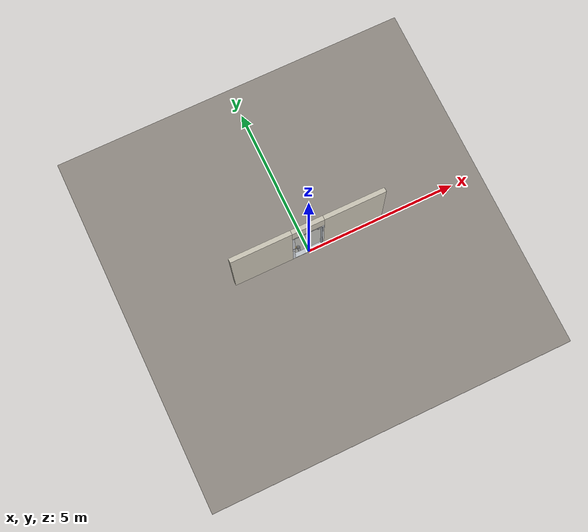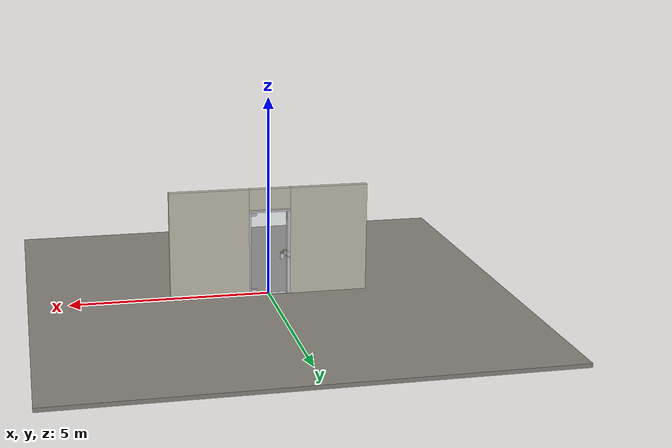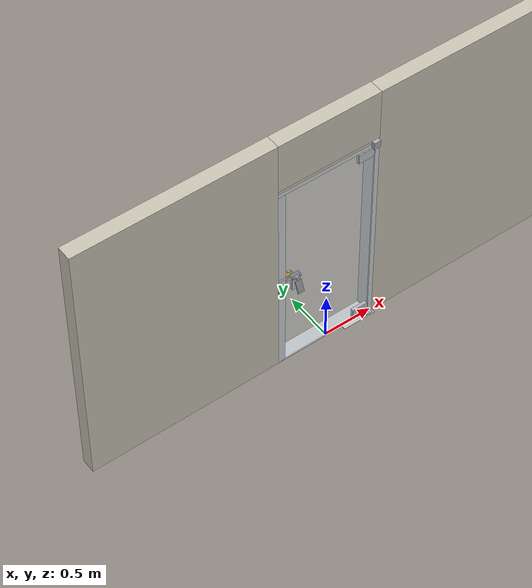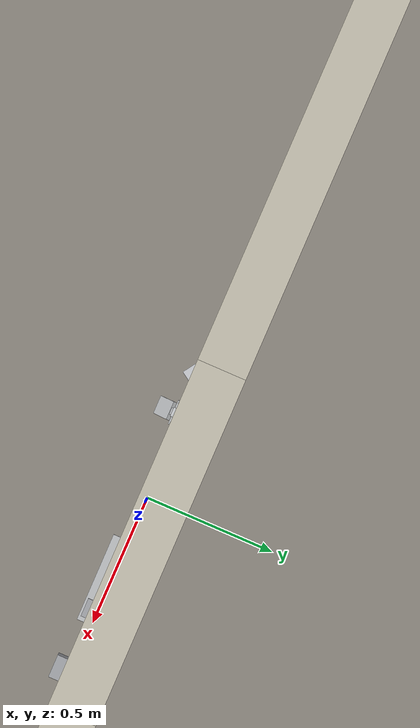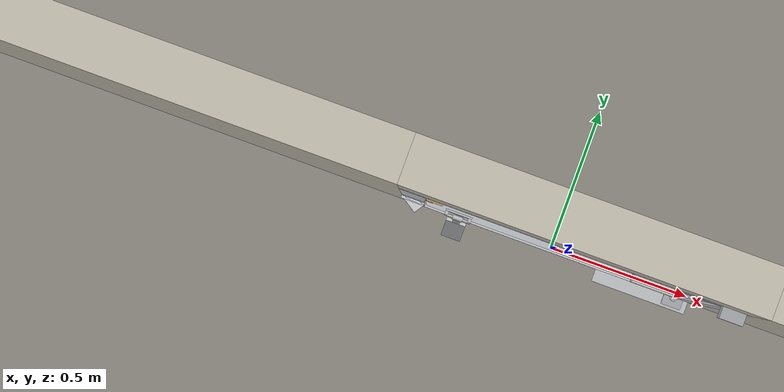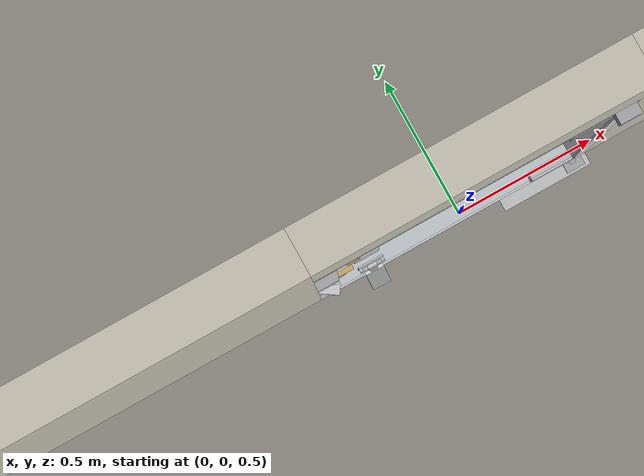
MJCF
<?xml version="1.0" ?>
<mujoco model="db0039_swing_single_full">
  <compiler angle="radian" meshdir="../../hardware" texturedir="../../textures" autolimits="true" inertiafromgeom="false"/>
  <option timestep="0.002" integrator="implicitfast" cone="elliptic" impratio="10" noslip_iterations="3">
    <flag multiccd="enable"/>
  </option>
  <size memory="16M"/>
  <default>
    <geom condim="4" solref="0.005 1" solimp="0.95 0.99 0.001"/>
    <joint solreflimit="0.005 1" solimplimit="0.95 0.99 0.001"/>
    <tendon solreflimit="0.005 1"/>
    <equality solref="0.002 1"/>
  </default>
  <visual>
    <headlight ambient="0.4 0.4 0.4" diffuse="0.7 0.7 0.7" specular="0.2 0.2 0.2"/>
    <quality shadowsize="4096"/>
    <map znear="0.01" zfar="60"/>
  </visual>
  <asset>
    <mesh name="thumbturn_eb5c9899a3" file="thumbturn_eb5c9899a3.obj"/>
    <material name="mat_floor" rgba="0.55 0.53 0.5 1" specular="0.2" shininess="0.15" reflectance="0"/>
    <material name="mat_wall" rgba="0.78 0.76 0.7 1" specular="0.2" shininess="0.1" reflectance="0"/>
    <material name="mat_leaf" rgba="0.85 0.92 0.95 0.25" specular="0.2" shininess="0.95" reflectance="0.1"/>
    <material name="mat_glass_leaf" rgba="0.85 0.92 0.95 0.25" specular="0.2" shininess="0.95" reflectance="0.1"/>
    <material name="mat_patch" rgba="0.75 0.76 0.77 1" specular="0.8" shininess="0.65" reflectance="0.4"/>
    <material name="mat_hinge" rgba="0.65 0.66 0.68 1" specular="0.74" shininess="0.5" reflectance="0.36"/>
    <material name="mat_op_stainless" rgba="0.75 0.76 0.77 1" specular="0.8" shininess="0.65" reflectance="0.4"/>
    <material name="mat_bolt" rgba="0.75 0.76 0.77 1" specular="0.8" shininess="0.65" reflectance="0.4"/>
    <material name="mat_deadbolt" rgba="0.85 0.66 0.3 1" specular="0.8" shininess="0.75" reflectance="0.4"/>
    <material name="mat_frame" rgba="0.8 0.81 0.83 1" specular="0.8" shininess="0.6" reflectance="0.4"/>
    <material name="mat_threshold" rgba="0.8 0.81 0.83 1" specular="0.8" shininess="0.6" reflectance="0.4"/>
    <material name="mat_closer" rgba="0.75 0.76 0.77 1" specular="0.8" shininess="0.65" reflectance="0.4"/>
    <texture name="skybox" type="skybox" builtin="gradient" rgb1="0.6 0.7 0.85" rgb2="0.9 0.92 0.95" width="256" height="256"/>
  </asset>
  <worldbody>
    <light name="sun" pos="1.5 -2.5 4" dir="-0.3 0.5 -0.8" directional="true" diffuse="0.8 0.8 0.8" specular="0.3 0.3 0.3" castshadow="true"/>
    <light name="fill" pos="-1.5 2.5 3" dir="0.3 -0.5 -0.7" directional="true" diffuse="0.35 0.35 0.4" castshadow="false"/>
    <camera name="robot_view" pos="0 -2.581812 1.812087" xyaxes="1 0 0 0 0.26963 0.962964" fovy="52"/>
    <camera name="far_view" pos="0 2.693812 1.812087" xyaxes="-1 0 0 0 -0.26963 0.962964" fovy="52"/>
    <camera name="iso" pos="-2.004737 -2.159762 2.234138" xyaxes="0.741536 -0.670913 0 0.242917 0.268487 0.932151" fovy="46"/>
    <camera name="detail_handle" pos="-0.1665 -0.857021 1.242663" xyaxes="0.97561 0.219512 0 -0.070934 0.315262 0.94635" fovy="38"/>
    <geom name="floor" type="box" size="6 6 0.05" pos="0 0 -0.05" material="mat_floor" group="0" contype="1" conaffinity="1" friction="0.8 0.005 0.0001" density="2400"/>
    <geom name="wall_left" type="box" size="0.98175 0.0725 1.3735" pos="-1.51825 0.056 1.3735" material="mat_wall" group="0" contype="1" conaffinity="1" friction="0.6 0.005 0.0001" density="800"/>
    <geom name="wall_right" type="box" size="0.99675 0.0725 1.3735" pos="1.50325 0.056 1.3735" material="mat_wall" group="0" contype="1" conaffinity="1" friction="0.6 0.005 0.0001" density="800"/>
    <geom name="wall_header" type="box" size="0.5215 0.0725 0.2625" pos="-0.015 0.056 2.4845" material="mat_wall" group="0" contype="1" conaffinity="1" friction="0.6 0.005 0.0001" density="800"/>
    <geom name="pivot_bottom_socket" type="box" size="0.035 0.035 0.0125" pos="0.4585 -0.0165 0.0025" material="mat_hinge" group="1" contype="0" conaffinity="0" density="7850"/>
    <geom name="pivot_top_bracket" type="box" size="0.035 0.035 0.0355" pos="0.4585 -0.0165 2.1865" material="mat_hinge" group="1" contype="0" conaffinity="0" density="7850"/>
    <geom name="leaf_deadbolt_strike_b" type="box" size="0.0155 0.003 0.0005" pos="-0.461 0 1.0865" quat="0.5 0.5 0.5 0.5" material="mat_deadbolt" group="1" contype="0" conaffinity="0" density="7800"/>
    <geom name="leaf_deadbolt_strike_l" type="box" size="0.003 0.0155 0.0005" pos="-0.461 -0.0125 1.105" quat="0.5 0.5 0.5 0.5" material="mat_deadbolt" group="1" contype="0" conaffinity="0" density="7800"/>
    <geom name="leaf_deadbolt_strike_t" type="box" size="0.0155 0.003 0.0005" pos="-0.461 0 1.1235" quat="0.5 0.5 0.5 0.5" material="mat_deadbolt" group="1" contype="0" conaffinity="0" density="7800"/>
    <geom name="leaf_deadbolt_strike_r" type="box" size="0.003 0.0155 0.0005" pos="-0.461 0.0125 1.105" quat="0.5 0.5 0.5 0.5" material="mat_deadbolt" group="1" contype="0" conaffinity="0" density="7800"/>
    <geom name="jamb_hinge" type="box" size="0.0225 0.0725 1.0735" pos="0.484 0.056 1.0735" material="mat_frame" group="0" contype="1" conaffinity="1" friction="0.6 0.005 0.0001" density="300"/>
    <geom name="strike_965_wall_n" type="box" size="0.0375 0.0595 0.018" pos="-0.499 0.069 0.965" material="mat_frame" group="0" contype="1" conaffinity="1" friction="0.6 0.005 0.0001" density="300"/>
    <geom name="strike_965_wall_p" type="box" size="0.0375 0.008 0.018" pos="-0.499 -0.0175 0.965" material="mat_frame" group="0" contype="1" conaffinity="1" friction="0.6 0.005 0.0001" density="300"/>
    <geom name="strike_965_ramp" type="box" size="0.0375 0.018028 0.018" pos="-0.502702 -0.019699 0.965" quat="0.957092 0 0 -0.289784" material="mat_frame" group="0" contype="1" conaffinity="1" friction="0.12 0.005 0.0001" density="300"/>
    <geom name="strike_965_back" type="box" size="0.026 0.0095 0.018" pos="-0.5105 0 0.965" material="mat_frame" group="0" contype="1" conaffinity="1" friction="0.6 0.005 0.0001" density="300"/>
    <geom name="strike_1105_wall_n" type="box" size="0.0375 0.0595 0.0155" pos="-0.499 0.069 1.105" material="mat_frame" group="0" contype="1" conaffinity="1" friction="0.6 0.005 0.0001" density="300"/>
    <geom name="strike_1105_wall_p" type="box" size="0.0375 0.0035 0.0155" pos="-0.499 -0.013 1.105" material="mat_frame" group="0" contype="1" conaffinity="1" friction="0.6 0.005 0.0001" density="300"/>
    <geom name="strike_1105_back" type="box" size="0.0228 0.0095 0.0155" pos="-0.5137 0 1.105" material="mat_frame" group="0" contype="1" conaffinity="1" friction="0.6 0.005 0.0001" density="300"/>
    <geom name="jamb_strike_0" type="box" size="0.0375 0.0725 0.4735" pos="-0.499 0.056 0.4735" material="mat_frame" group="0" contype="1" conaffinity="1" friction="0.6 0.005 0.0001" density="300"/>
    <geom name="jamb_strike_1" type="box" size="0.0375 0.0725 0.05325" pos="-0.499 0.056 1.03625" material="mat_frame" group="0" contype="1" conaffinity="1" friction="0.6 0.005 0.0001" density="300"/>
    <geom name="jamb_strike_2" type="box" size="0.0375 0.0725 0.51325" pos="-0.499 0.056 1.63375" material="mat_frame" group="0" contype="1" conaffinity="1" friction="0.6 0.005 0.0001" density="300"/>
    <geom name="jamb_head" type="box" size="0.5215 0.0725 0.0225" pos="-0.015 0.056 2.1695" material="mat_frame" group="0" contype="1" conaffinity="1" friction="0.6 0.005 0.0001" density="300"/>
    <geom name="head_stud" type="box" size="0.5215 0.0725 0.015" pos="-0.015 0.056 2.207" material="mat_wall" group="0" contype="1" conaffinity="1" friction="0.6 0.005 0.0001" density="500"/>
    <geom name="threshold" type="box" size="0.5065 0.0725 0.0065" pos="0 0.056 0.0065" material="mat_threshold" group="0" contype="1" conaffinity="1" friction="0.5 0.005 0.0001" density="2700"/>
    <geom name="floor_spring_cover" type="box" size="0.17 0.06 0.002" pos="0.3415 0 0.002" material="mat_closer" group="1" contype="0" conaffinity="0" density="7900"/>
    <site name="approach_point" pos="0 -1.5 0" quat="1 0 0 0" size="0.05" rgba="0.2 0.9 0.2 0.5" group="4"/>
    <site name="goal_point" pos="0 1.5 0" quat="1 0 0 0" size="0.05" rgba="0.2 0.9 0.2 0.5" group="4"/>
    <site name="door_plane_center" pos="0 0 1.0735" quat="1 0 0 0" size="0.02" rgba="0.2 0.9 0.2 0.5" group="4"/>
    <body name="leaf" pos="0.4615 0 0">
      <inertial pos="-0.500178 -0.000237 1.069226" mass="64.411417" quat="0.502751 -0.503517 -0.496463 -0.49723" diaginertia="4.952386415 21.995379412 26.940165782"/>
      <joint name="leaf_hinge" type="hinge" axis="0 0 1" pos="-0.003 -0.0165 0" limited="true" range="0 1.570796" solreflimit="0.02 1" damping="8.268966" frictionloss="2.379844" stiffness="14.514931" springref="-2.059948" armature="0.02"/>
      <geom name="leaf_glass" type="box" size="0.457 0.0095 1.063" pos="-0.463 0 1.08" material="mat_glass_leaf" group="0" contype="1" conaffinity="1" friction="0.4 0.005 0.0001" density="1"/>
      <geom name="leaf_patch_bot" type="box" size="0.08 0.0175 0.05" pos="-0.086 0 0.077" material="mat_patch" group="1" contype="0" conaffinity="0" density="1"/>
      <geom name="leaf_patch_top" type="box" size="0.08 0.0175 0.05" pos="-0.086 0 2.083" material="mat_patch" group="1" contype="0" conaffinity="0" density="1"/>
      <geom name="pivot_bottom" type="cylinder" size="0.014 0.004" pos="-0.003 -0.0165 0.012" material="mat_hinge" group="1" contype="0" conaffinity="0" density="7850"/>
      <geom name="pivot_top" type="cylinder" size="0.014 0.004" pos="-0.003 -0.0165 2.147" material="mat_hinge" group="1" contype="0" conaffinity="0" density="7850"/>
      <geom name="leaf_handle_paddle_backplate_n" type="box" size="0.044 0.003 0.09" pos="-0.808 -0.0125 0.984895" material="mat_op_stainless" group="0" contype="1" conaffinity="1" friction="0.6 0.005 0.0001" density="3000"/>
      <geom name="leaf_handle_paddle_bearing_n_-1" type="box" size="0.005 0.006 0.009" pos="-0.846 -0.0215 1.047895" material="mat_op_stainless" group="0" contype="1" conaffinity="1" friction="0.6 0.005 0.0001" density="3000"/>
      <geom name="leaf_handle_paddle_bearing_n_1" type="box" size="0.005 0.006 0.009" pos="-0.77 -0.0215 1.047895" material="mat_op_stainless" group="0" contype="1" conaffinity="1" friction="0.6 0.005 0.0001" density="3000"/>
      <geom name="leaf_handle_paddle_pin_n" type="cylinder" size="0.004 0.043" pos="-0.808 -0.0275 1.047895" quat="0.707107 0 0.707107 0" material="mat_op_stainless" group="1" contype="0" conaffinity="0" density="7850"/>
      <geom name="leaf_handle_paddle_backplate_p" type="box" size="0.044 0.003 0.09" pos="-0.808 0.0125 0.984895" material="mat_op_stainless" group="0" contype="1" conaffinity="1" friction="0.6 0.005 0.0001" density="3000"/>
      <geom name="leaf_handle_paddle_bearing_p_-1" type="box" size="0.005 0.006 0.009" pos="-0.846 0.0215 1.047895" material="mat_op_stainless" group="0" contype="1" conaffinity="1" friction="0.6 0.005 0.0001" density="3000"/>
      <geom name="leaf_handle_paddle_bearing_p_1" type="box" size="0.005 0.006 0.009" pos="-0.77 0.0215 1.047895" material="mat_op_stainless" group="0" contype="1" conaffinity="1" friction="0.6 0.005 0.0001" density="3000"/>
      <geom name="leaf_handle_paddle_pin_p" type="cylinder" size="0.004 0.043" pos="-0.808 0.0275 1.047895" quat="0.707107 0 0.707107 0" material="mat_op_stainless" group="1" contype="0" conaffinity="0" density="7850"/>
      <geom name="leaf_latch_bolt_faceplate" type="box" size="0.0006 0.0075 0.028" pos="-0.9194 0 0.965" material="mat_bolt" group="1" contype="0" conaffinity="0" density="8500"/>
      <geom name="leaf_deadbolt_faceplate" type="box" size="0.0006 0.0075 0.0245" pos="-0.9194 0 1.105" material="mat_deadbolt" group="1" contype="0" conaffinity="0" density="8500"/>
      <site name="leaf_edge_mid" pos="-0.92 0 1.063" quat="1 0 0 0" size="0.02" rgba="0.2 0.9 0.2 0.5" group="4"/>
      <body name="leaf_handle" pos="-0.808 -0.0275 1.047895">
        <inertial pos="0 -0.031074 -0.073496" mass="0.333798" quat="-0.390699 0.589368 0.589368 0.390699" diaginertia="0.00010582 0.00062862 0.000726597"/>
        <joint name="leaf_handle_hinge" type="hinge" axis="-1 0 0" limited="true" range="0 0.4" damping="0.27663" frictionloss="0.056" stiffness="1.5" springref="-1" armature="0.01"/>
        <geom name="leaf_handle_paddle_col_n" type="box" size="0.032 0.006 0.063" pos="0 -0.035048 -0.082895" quat="0.980067 -0.198669 0 0" material="mat_op_stainless" group="0" contype="1" conaffinity="1" friction="0.6 0.005 0.0001" density="3000"/>
        <geom name="leaf_handle_paddle_neck_n" type="box" size="0.012 0.004 0.021" pos="0 -0.008178 -0.019342" quat="0.980067 -0.198669 0 0" material="mat_op_stainless" group="0" contype="1" conaffinity="1" friction="0.6 0.005 0.0001" density="3000"/>
        <geom name="leaf_handle_paddle_hub_n" type="cylinder" size="0.008 0.016" pos="0 0 0" quat="0.707107 0 0.707107 0" material="mat_op_stainless" group="1" contype="0" conaffinity="0" density="3000"/>
        <site name="leaf_handle_grip_n" pos="0 -0.029521 -0.085232" quat="0.552531 -0.833492 0 0" size="0.012" rgba="0.2 0.9 0.2 0.5" group="4"/>
      </body>
      <body name="leaf_handle_paddle_follower_p" pos="-0.808 0.0275 1.047895">
        <inertial pos="0 0.031074 -0.073496" mass="0.333798" quat="0.589368 -0.390699 -0.390699 -0.589368" diaginertia="0.00010582 0.00062862 0.000726597"/>
        <joint name="leaf_handle_paddle_follower_p_hinge" type="hinge" axis="-1 0 0" limited="true" range="0 0.4" armature="0.002"/>
        <geom name="leaf_handle_paddle_col_p" type="box" size="0.032 0.006 0.063" pos="0 0.035048 -0.082895" quat="0.980067 0.198669 0 0" material="mat_op_stainless" group="0" contype="1" conaffinity="1" friction="0.6 0.005 0.0001" density="3000"/>
        <geom name="leaf_handle_paddle_neck_p" type="box" size="0.012 0.004 0.021" pos="0 0.008178 -0.019342" quat="0.980067 0.198669 0 0" material="mat_op_stainless" group="0" contype="1" conaffinity="1" friction="0.6 0.005 0.0001" density="3000"/>
        <geom name="leaf_handle_paddle_hub_p" type="cylinder" size="0.008 0.016" pos="0 0 0" quat="0.707107 0 0.707107 0" material="mat_op_stainless" group="1" contype="0" conaffinity="0" density="3000"/>
        <site name="leaf_handle_grip_p" pos="0 0.040574 -0.080559" quat="0.833492 -0.552531 0 0" size="0.012" rgba="0.2 0.9 0.2 0.5" group="4"/>
      </body>
      <body name="leaf_latch_bolt" pos="-0.92 0 0.965">
        <inertial pos="0.0055 0 0" mass="0.074627" quat="0.92388 0.382683 0 0" diaginertia="0.000002271 0.000013255 0.000013255"/>
        <joint name="leaf_latch_bolt_slide" type="slide" axis="1 0 0" limited="true" range="0 0.019" damping="2" frictionloss="0.3" stiffness="550" springref="-0.01" armature="0.1"/>
        <geom name="leaf_latch_bolt_capsule" type="capsule" size="0.008 0.0165" pos="0.0055 0 0" quat="0.707107 0 -0.707107 0" material="mat_bolt" group="0" contype="1" conaffinity="1" friction="0.2 0.005 0.0001" density="8500"/>
      </body>
      <body name="leaf_deadbolt" pos="-0.92 0 1.105">
        <inertial pos="0.0277 0 0" mass="0.18836" quat="0 0 0.707107 0.707107" diaginertia="0.000013829 0.000052194 0.000057986"/>
        <joint name="leaf_deadbolt_slide" type="slide" axis="1 0 0" limited="true" range="0 0.0254" damping="5" frictionloss="1.5" armature="0.1" ref="0.0254"/>
        <geom name="leaf_deadbolt_box" type="box" size="0.0277 0.008 0.0125" pos="0.0277 0 0" material="mat_deadbolt" group="0" contype="1" conaffinity="1" friction="0.3 0.005 0.0001" density="8500"/>
      </body>
      <body name="leaf_deadbolt_thumbturn" pos="-0.855 0.0095 1.105">
        <inertial pos="0 0.012928 0" mass="0.178946" quat="0.000001 -0.707107 0.707107 -0.000001" diaginertia="0.000026045 0.000026215 0.000032438"/>
        <joint name="leaf_deadbolt_thumbturn_hinge" type="hinge" axis="0 -1 0" limited="true" range="0 1.5708" damping="0.05" frictionloss="0.3" armature="0.005" ref="1.5708"/>
        <geom name="leaf_deadbolt_thumbturn_mesh" type="mesh" mesh="thumbturn_eb5c9899a3" pos="0 0 0" quat="0.500001 -0.500001 0.499999 0.499999" material="mat_deadbolt" group="0" contype="1" conaffinity="1" friction="0.6 0.005 0.0001" density="7100"/>
        <geom name="leaf_deadbolt_thumbturn_col" type="box" size="0.006 0.012 0.016" pos="0 0.02 0" quat="0.707105 0 -0.707108 0" material="mat_deadbolt" group="3" contype="1" conaffinity="1" rgba="0.8 0.3 0.3 0.25" friction="0.6 0.005 0.0001" density="7100"/>
      </body>
    </body>
  </worldbody>
  <tendon>
    <fixed name="leaf_latch_bolt_coupling" limited="true" range="0 10">
      <joint joint="leaf_latch_bolt_slide" coef="1"/>
      <joint joint="leaf_handle_hinge" coef="-0.051351"/>
    </fixed>
  </tendon>
  <equality>
    <joint name="leaf_handle_paddle_cam_p" joint1="leaf_handle_paddle_follower_p_hinge" joint2="leaf_handle_hinge" polycoef="0 1 0 0 0" active="true"/>
    <joint name="leaf_deadbolt_couple" joint1="leaf_deadbolt_slide" joint2="leaf_deadbolt_thumbturn_hinge" polycoef="0 0.01617 0 0 0" active="true"/>
  </equality>
  <contact>
    <exclude body1="leaf_deadbolt" body2="leaf_deadbolt_thumbturn"/>
  </contact>
  <sensor>
    <jointpos name="leaf_hinge_pos" joint="leaf_hinge"/>
    <jointvel name="leaf_hinge_vel" joint="leaf_hinge"/>
    <jointpos name="leaf_handle_hinge_pos" joint="leaf_handle_hinge"/>
    <jointvel name="leaf_handle_hinge_vel" joint="leaf_handle_hinge"/>
    <jointpos name="leaf_latch_bolt_slide_pos" joint="leaf_latch_bolt_slide"/>
    <jointvel name="leaf_latch_bolt_slide_vel" joint="leaf_latch_bolt_slide"/>
    <jointpos name="leaf_deadbolt_slide_pos" joint="leaf_deadbolt_slide"/>
    <jointvel name="leaf_deadbolt_slide_vel" joint="leaf_deadbolt_slide"/>
    <jointpos name="leaf_deadbolt_thumbturn_hinge_pos" joint="leaf_deadbolt_thumbturn_hinge"/>
    <jointvel name="leaf_deadbolt_thumbturn_hinge_vel" joint="leaf_deadbolt_thumbturn_hinge"/>
  </sensor>
</mujoco>
